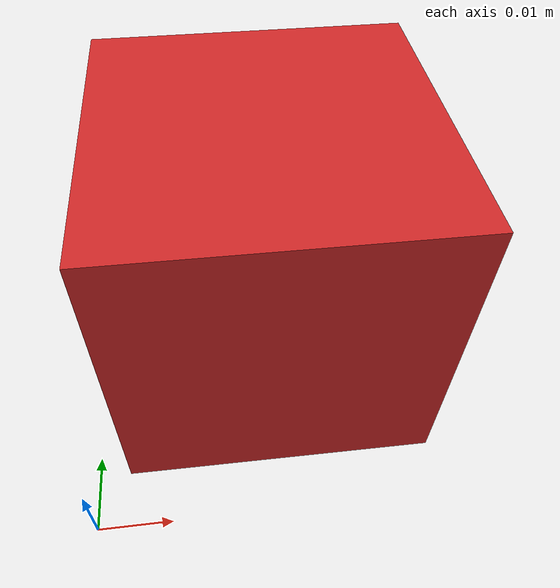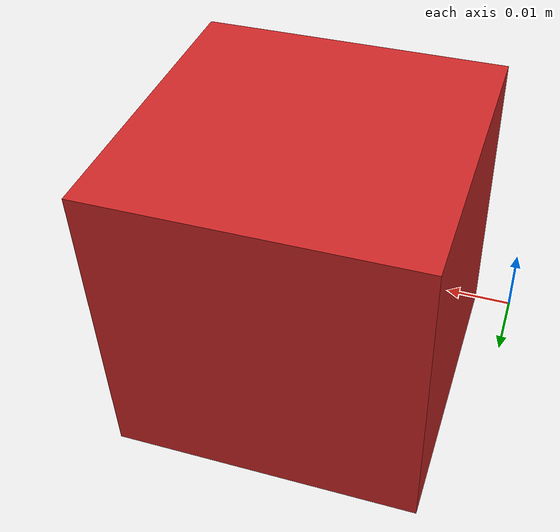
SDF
<sdf version='1.6'>
  <model name='block'>
    <link name='block'>
      <pose frame=''>0 0 0 0 -0 0</pose>
      <inertial>
        <pose frame=''>0.025 0.025 0.025 0 -0 0</pose>
        <mass>0.5</mass>
        <inertia>
          <ixx>0.5</ixx>
          <ixy>0</ixy>
          <ixz>0</ixz>
          <iyy>0.5</iyy>
          <iyz>0</iyz>
          <izz>0.5</izz>
        </inertia>
      </inertial>
      <collision name='block_collision'>
        <pose frame=''>0.025 0.025 0.025 0 -0 0</pose>
        <geometry>
          <box>
            <size>0.04 0.04 0.04</size>
          </box>
        </geometry>
        <surface>
          <contact>
            <ode/>
          </contact>
          <friction>
            <ode>
              <mu>1000</mu>
              <mu2>1000</mu2>
            </ode>
          </friction>
        </surface>
      </collision>
      <visual name='block_visual'>
        <pose frame=''>0.025 0.025 0.025 0 -0 0</pose>
        <geometry>
          <box>
            <size>0.04 0.04 0.04</size>
          </box>
        </geometry>
        <material>
          <script>
            <name>Gazebo/Red</name>
            <uri>file://media/materials/scripts/gazebo.material</uri>
          </script>
        </material>
      </visual>
      <gravity>1</gravity>
      <velocity_decay/>
    </link>
  </model>
</sdf>
